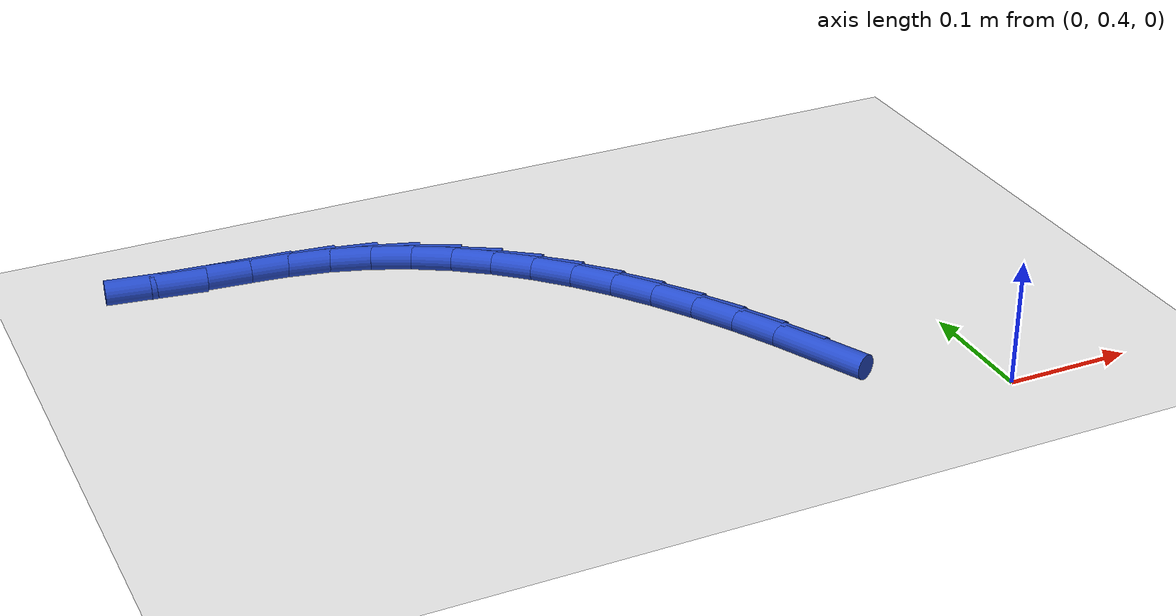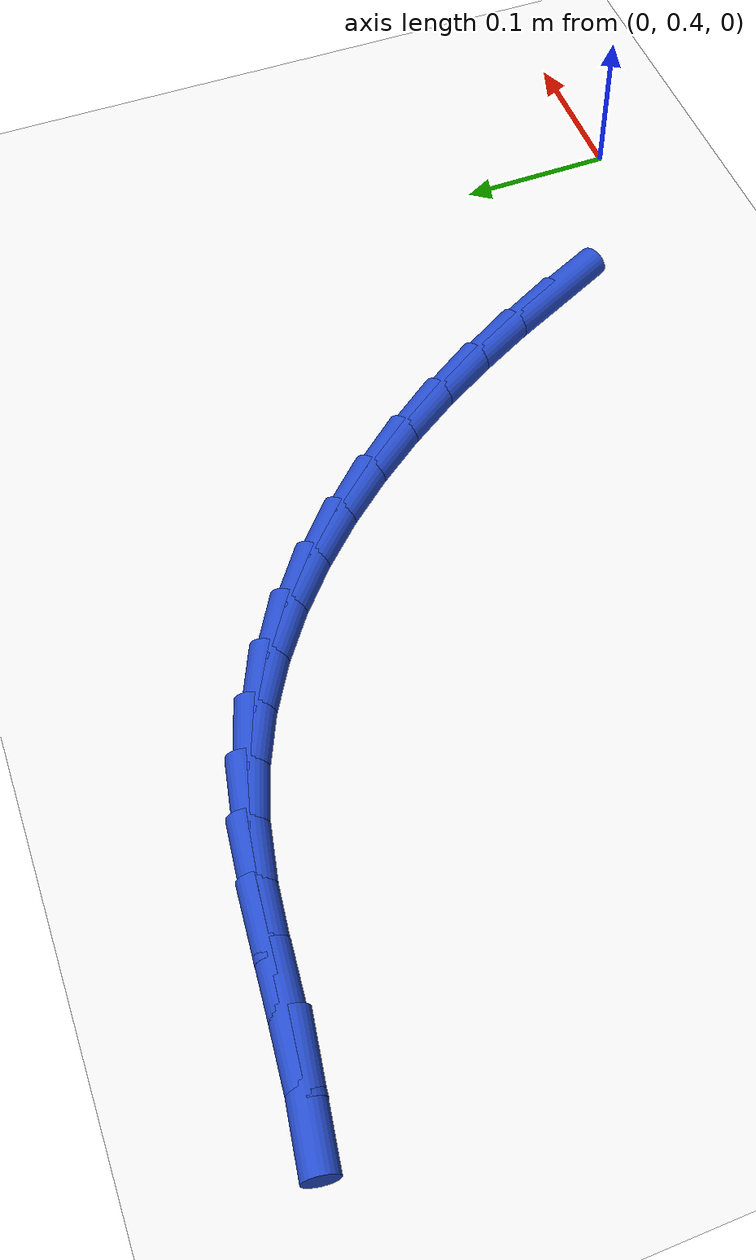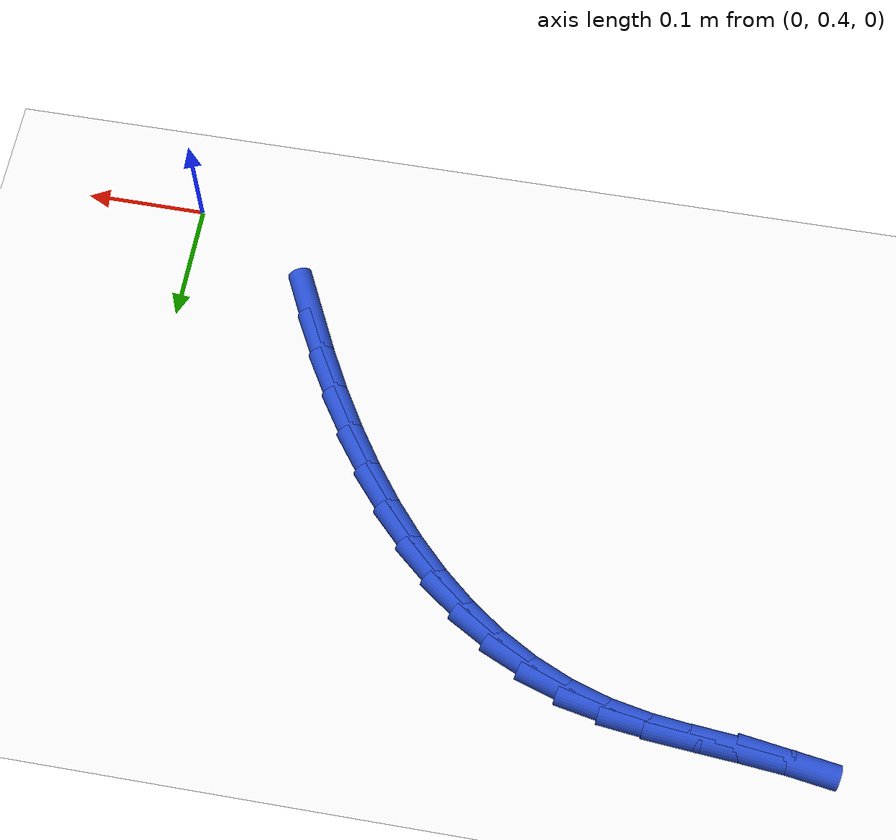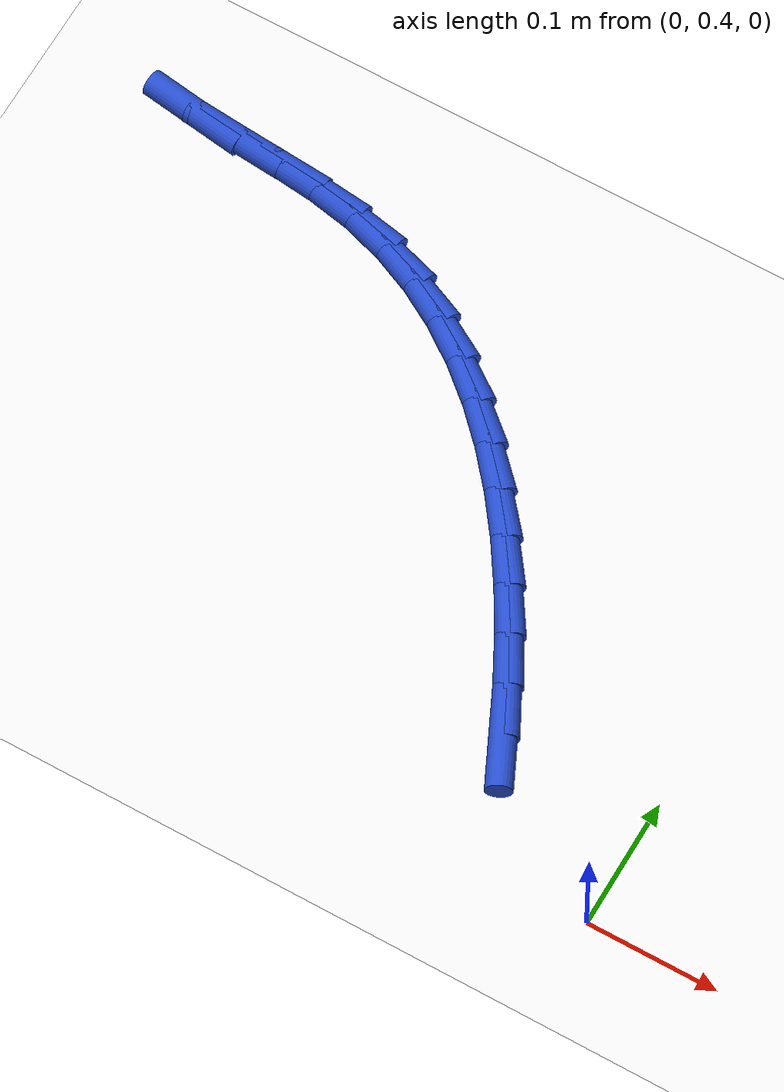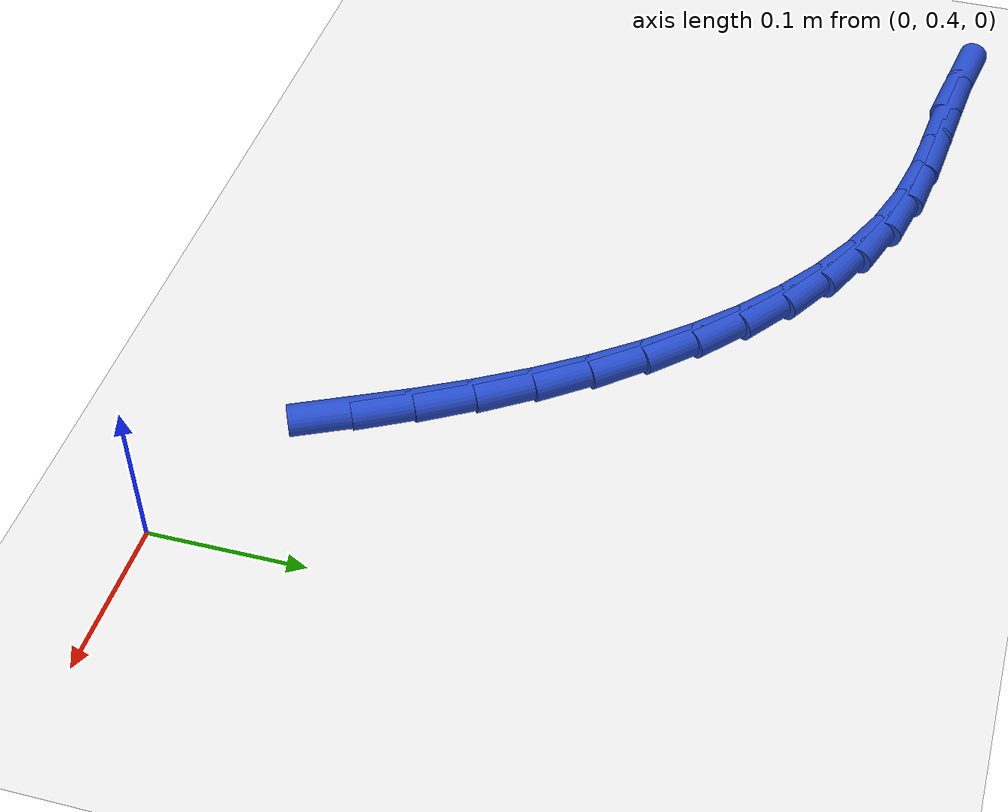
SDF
<sdf version="1.6">
 <world name="default">
  <model name="ground_plane">
   <static>1</static>
   <link name="link">
    <collision name="collision">
     <geometry><plane><normal>0 0 1</normal><size>100 100</size></plane></geometry>
     <surface><friction><ode><mu>100</mu><mu2>50</mu2></ode></friction></surface>
    </collision>
    <visual name="visual">
     <cast_shadows>0</cast_shadows>
     <geometry><plane><normal>0 0 1</normal><size>100 100</size></plane></geometry>
     <material>
      <script><uri>file://media/materials/scripts/gazebo.material</uri><name>Gazebo/WhiteGlow</name></script>
     </material>
    </visual>
   </link>
  </model>
  <model name="line">
   <link name="link_14">
    <pose>-0.1139540283054979 0.48669709347208023 0.01 0 1.57 -1.125122166517232</pose>
    <collision name="collision">
     <geometry><cylinder><radius>0.01</radius><length>0.08</length></cylinder></geometry>
    </collision>
    <visual name="visual">
     <material>
      <script><name>Gazebo/Blue</name><uri>file://media/materials/scripts/gazebo.material</uri></script>
     </material>
     <geometry><cylinder><radius>0.01</radius><length>0.08</length></cylinder></geometry>
    </visual>
   </link>
   <link name="link_15">
    <pose>-0.13046920892364738 0.5212671412210256 0.01 0 1.57 -1.0848316193505072</pose>
    <collision name="collision">
     <geometry><cylinder><radius>0.01</radius><length>0.08</length></cylinder></geometry>
    </collision>
    <visual name="visual">
     <material>
      <script><name>Gazebo/Blue</name><uri>file://media/materials/scripts/gazebo.material</uri></script>
     </material>
     <geometry><cylinder><radius>0.01</radius><length>0.08</length></cylinder></geometry>
    </visual>
   </link>
   <link name="link_16">
    <pose>-0.14822204322507704 0.5548761902776121 0.01 0 1.57 -1.0397818706488213</pose>
    <collision name="collision">
     <geometry><cylinder><radius>0.01</radius><length>0.08</length></cylinder></geometry>
    </collision>
    <visual name="visual">
     <material>
      <script><name>Gazebo/Blue</name><uri>file://media/materials/scripts/gazebo.material</uri></script>
     </material>
     <geometry><cylinder><radius>0.01</radius><length>0.08</length></cylinder></geometry>
    </visual>
   </link>
   <link name="link_17">
    <pose>-0.16724734661049392 0.5872717866762054 0.01 0 1.57 -0.9892498983041441</pose>
    <collision name="collision">
     <geometry><cylinder><radius>0.01</radius><length>0.08</length></cylinder></geometry>
    </collision>
    <visual name="visual">
     <material>
      <script><name>Gazebo/Blue</name><uri>file://media/materials/scripts/gazebo.material</uri></script>
     </material>
     <geometry><cylinder><radius>0.01</radius><length>0.08</length></cylinder></geometry>
    </visual>
   </link>
   <link name="link_18">
    <pose>-0.187579934480605 0.6182014764511705 0.01 0 1.57 -0.9324375255819655</pose>
    <collision name="collision">
     <geometry><cylinder><radius>0.01</radius><length>0.08</length></cylinder></geometry>
    </collision>
    <visual name="visual">
     <material>
      <script><name>Gazebo/Blue</name><uri>file://media/materials/scripts/gazebo.material</uri></script>
     </material>
     <geometry><cylinder><radius>0.01</radius><length>0.08</length></cylinder></geometry>
    </visual>
   </link>
   <link name="link_19">
    <pose>-0.2092546222361176 0.6474128056368738 0.01 0 1.57 -0.8684979622804968</pose>
    <collision name="collision">
     <geometry><cylinder><radius>0.01</radius><length>0.08</length></cylinder></geometry>
    </collision>
    <visual name="visual">
     <material>
      <script><name>Gazebo/Blue</name><uri>file://media/materials/scripts/gazebo.material</uri></script>
     </material>
     <geometry><cylinder><radius>0.01</radius><length>0.08</length></cylinder></geometry>
    </visual>
   </link>
   <link name="link_20">
    <pose>-0.23230622527773873 0.6746533202676802 0.01 0 1.57 -0.7965922368507615</pose>
    <collision name="collision">
     <geometry><cylinder><radius>0.01</radius><length>0.08</length></cylinder></geometry>
    </collision>
    <visual name="visual">
     <material>
      <script><name>Gazebo/Blue</name><uri>file://media/materials/scripts/gazebo.material</uri></script>
     </material>
     <geometry><cylinder><radius>0.01</radius><length>0.08</length></cylinder></geometry>
    </visual>
   </link>
   <link name="link_21">
    <pose>-0.2567695590061753 0.6996705663779552 0.01 0 1.57 -0.7159895367759453</pose>
    <collision name="collision">
     <geometry><cylinder><radius>0.01</radius><length>0.08</length></cylinder></geometry>
    </collision>
    <visual name="visual">
     <material>
      <script><name>Gazebo/Blue</name><uri>file://media/materials/scripts/gazebo.material</uri></script>
     </material>
     <geometry><cylinder><radius>0.01</radius><length>0.08</length></cylinder></geometry>
    </visual>
   </link>
   <link name="link_22">
    <pose>-0.28267943882213464 0.7222120900020648 0.01 0 1.57 -0.6262232501258135</pose>
    <collision name="collision">
     <geometry><cylinder><radius>0.01</radius><length>0.08</length></cylinder></geometry>
    </collision>
    <visual name="visual">
     <material>
      <script><name>Gazebo/Blue</name><uri>file://media/materials/scripts/gazebo.material</uri></script>
     </material>
     <geometry><cylinder><radius>0.01</radius><length>0.08</length></cylinder></geometry>
    </visual>
   </link>
   <link name="link_23">
    <pose>-0.3100706801263239 0.7420254371743742 0.01 0 1.57 -0.5273012350060815</pose>
    <collision name="collision">
     <geometry><cylinder><radius>0.01</radius><length>0.08</length></cylinder></geometry>
    </collision>
    <visual name="visual">
     <material>
      <script><name>Gazebo/Blue</name><uri>file://media/materials/scripts/gazebo.material</uri></script>
     </material>
     <geometry><cylinder><radius>0.01</radius><length>0.08</length></cylinder></geometry>
    </visual>
   </link>
   <link name="link_24">
    <pose>-0.3389780983194499 0.7588581539292493 0.01 0 1.57 -0.41993820278258054</pose>
    <collision name="collision">
     <geometry><cylinder><radius>0.01</radius><length>0.08</length></cylinder></geometry>
    </collision>
    <visual name="visual">
     <material>
      <script><name>Gazebo/Blue</name><uri>file://media/materials/scripts/gazebo.material</uri></script>
     </material>
     <geometry><cylinder><radius>0.01</radius><length>0.08</length></cylinder></geometry>
    </visual>
   </link>
   <link name="link_25">
    <pose>-0.3694365088022198 0.7724577863010549 0.01 0 1.57 -0.30573321195760766</pose>
    <collision name="collision">
     <geometry><cylinder><radius>0.01</radius><length>0.08</length></cylinder></geometry>
    </collision>
    <visual name="visual">
     <material>
      <script><name>Gazebo/Blue</name><uri>file://media/materials/scripts/gazebo.material</uri></script>
     </material>
     <geometry><cylinder><radius>0.01</radius><length>0.08</length></cylinder></geometry>
    </visual>
   </link>
   <link name="link_26">
    <pose>-0.4014807269753409 0.7825718803241573 0.01 0 1.57 -0.19208338854878154</pose>
    <collision name="collision">
     <geometry><cylinder><radius>0.01</radius><length>0.08</length></cylinder></geometry>
    </collision>
    <visual name="visual">
     <material>
      <script><name>Gazebo/Blue</name><uri>file://media/materials/scripts/gazebo.material</uri></script>
     </material>
     <geometry><cylinder><radius>0.01</radius><length>0.08</length></cylinder></geometry>
    </visual>
   </link>
   <link name="link_27">
    <pose>-0.43508282652247965 0.7891068553989355 0.01 0 1.57 -0.11354272169219927</pose>
    <collision name="collision">
     <geometry><cylinder><radius>0.01</radius><length>0.08</length></cylinder></geometry>
    </collision>
    <visual name="visual">
     <material>
      <script><name>Gazebo/Blue</name><uri>file://media/materials/scripts/gazebo.material</uri></script>
     </material>
     <geometry><cylinder><radius>0.01</radius><length>0.08</length></cylinder></geometry>
    </visual>
   </link>
   <link name="link_28">
    <pose>-0.46978258637481884 0.793063779361882 0.01 0 1.57 -0.08064058281410354</pose>
    <collision name="collision">
     <geometry><cylinder><radius>0.01</radius><length>0.08</length></cylinder></geometry>
    </collision>
    <visual name="visual">
     <material>
      <script><name>Gazebo/Blue</name><uri>file://media/materials/scripts/gazebo.material</uri></script>
     </material>
     <geometry><cylinder><radius>0.01</radius><length>0.08</length></cylinder></geometry>
    </visual>
   </link>
   <link name="link_29">
    <pose>-0.5049376709220021 0.7959048669797794 0.01 0 1.57 -0.09094979658502232</pose>
    <collision name="collision">
     <geometry><cylinder><radius>0.01</radius><length>0.08</length></cylinder></geometry>
    </collision>
    <visual name="visual">
     <material>
      <script><name>Gazebo/Blue</name><uri>file://media/materials/scripts/gazebo.material</uri></script>
     </material>
     <geometry><cylinder><radius>0.01</radius><length>0.08</length></cylinder></geometry>
    </visual>
   </link>
   <link name="link_30">
    <pose>-0.5399051074489903 0.799093946283605 0.01 0 1.57 -0.14546107586776216</pose>
    <collision name="collision">
     <geometry><cylinder><radius>0.01</radius><length>0.08</length></cylinder></geometry>
    </collision>
    <visual name="visual">
     <material>
      <script><name>Gazebo/Blue</name><uri>file://media/materials/scripts/gazebo.material</uri></script>
     </material>
     <geometry><cylinder><radius>0.01</radius><length>0.08</length></cylinder></geometry>
    </visual>
   </link>
  </model>
 </world>
</sdf>
